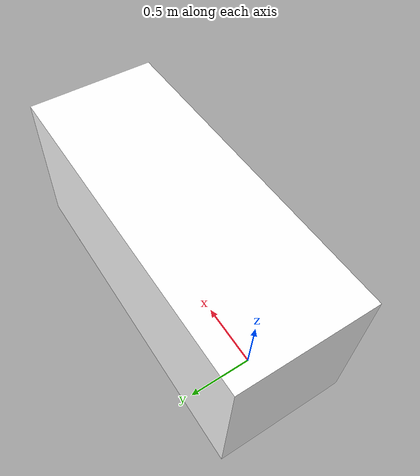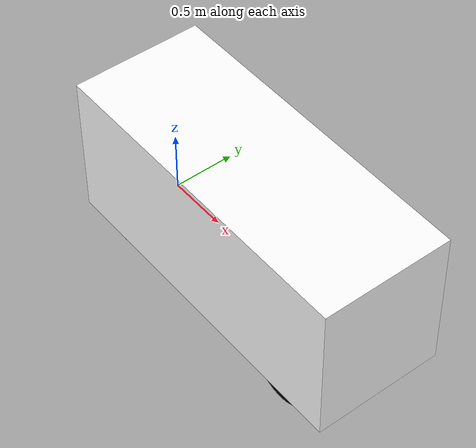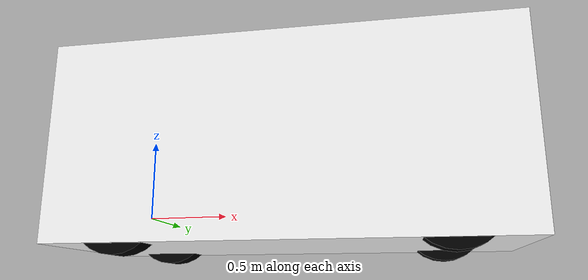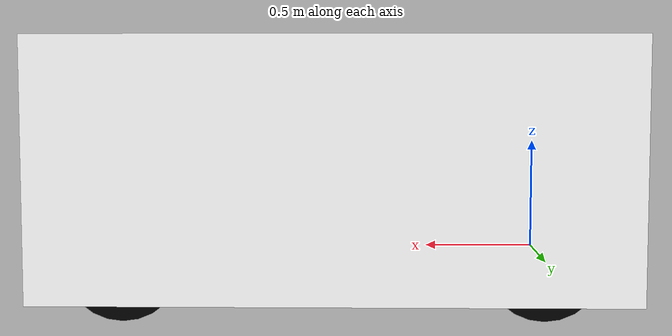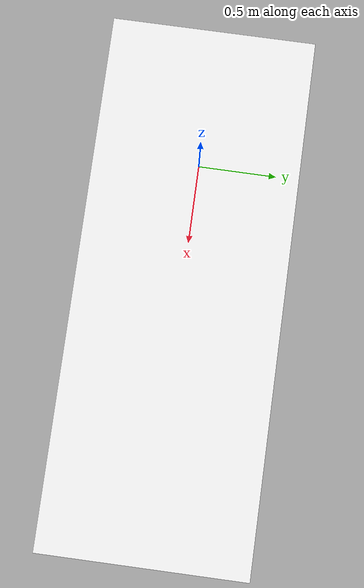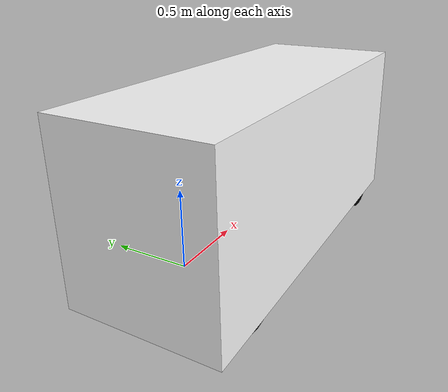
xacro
<?xml version="1.0"?>
<robot name="bee1" xmlns:xacro="http://www.ros.org/wiki/xacro">

  <xacro:property name="wheel_radius" value="0.265" />
  <xacro:property name="wheel_width" value="0.15" />
  <xacro:property name="wheelbase" value="1.860" />
  <xacro:property name="front_track" value="0.886" />
  <xacro:property name="rear_track" value="0.850" />

  <link name="base_link">
    <visual>
      <origin xyz="${wheelbase/2} 0 0.4" rpy="0 0 0"/>
      <geometry>
        <box size="2.740 1.060 1.2"/>
      </geometry>
      <material name="white"><color rgba="1 1 1 1"/></material>
    </visual>
    <collision>
      <origin xyz="${wheelbase/2} 0 0.4" rpy="0 0 0"/>
      <geometry>
        <box size="2.740 1.060 1.2"/>
      </geometry>
    </collision>
    <inertial>
      <origin xyz="0.7 0 0.2" rpy="0 0 0"/>
      <mass value="760.0"/>
      <inertia ixx="100.0" ixy="0.0" ixz="0.0" iyy="100.0" iyz="0.0" izz="100.0"/>
    </inertial>
  </link>

  <xacro:macro name="wheel" params="prefix x y yaw">
    <link name="${prefix}_wheel">
      <visual>
        <geometry><cylinder length="${wheel_width}" radius="${wheel_radius}"/></geometry>
        <material name="black"><color rgba="0 0 0 1"/></material>
      </visual>
      <collision>
        <geometry><cylinder length="${wheel_width}" radius="${wheel_radius}"/></geometry>
      </collision>
      <inertial>
        <mass value="15.0"/>
        <inertia ixx="0.3" ixy="0" ixz="0" iyy="0.3" iyz="0" izz="0.5"/>
      </inertial>
    </link>
    <joint name="${prefix}_wheel_joint" type="continuous">
      <parent link="base_link"/>
      <child link="${prefix}_wheel"/>
      <origin xyz="${x} ${y} 0" rpy="${yaw} 0 0"/>
      <axis xyz="0 0 1"/>
    </joint>
  </xacro:macro>

  <xacro:wheel prefix="rear_right" x="0" y="-${rear_track/2}" yaw="${pi/2}"/>
  <xacro:wheel prefix="rear_left"  x="0" y="${rear_track/2}"  yaw="${pi/2}"/>

  <xacro:wheel prefix="front_right" x="${wheelbase}" y="-${front_track/2}" yaw="${pi/2}"/>
  <xacro:wheel prefix="front_left"  x="${wheelbase}" y="${front_track/2}"  yaw="${pi/2}"/>

</robot>
